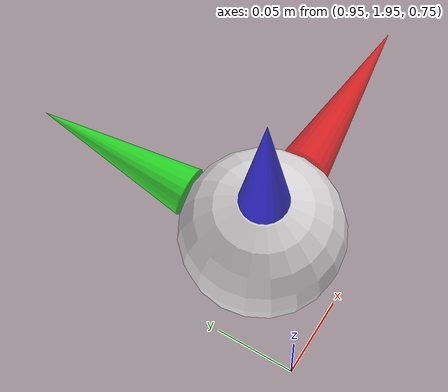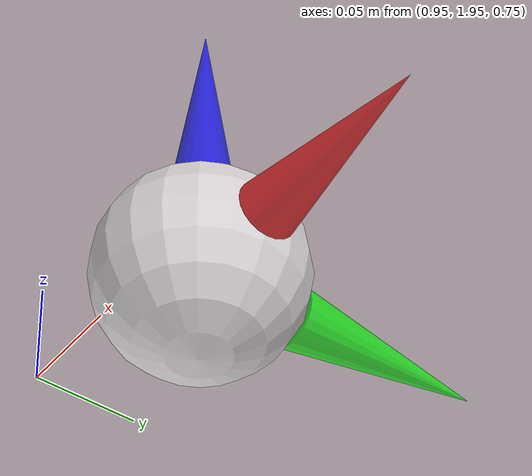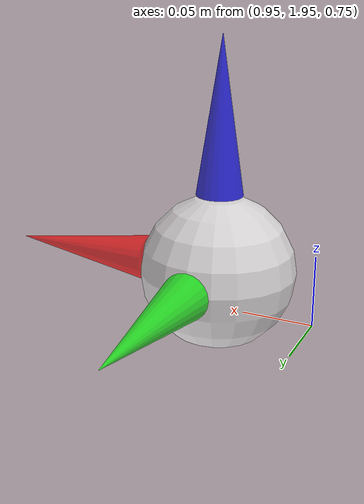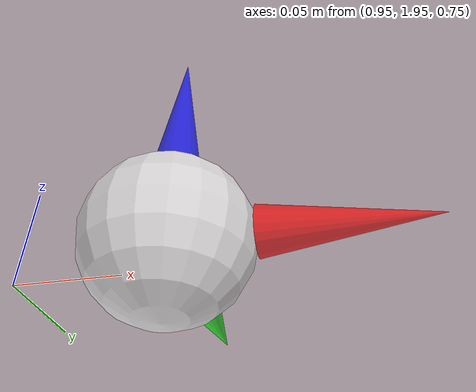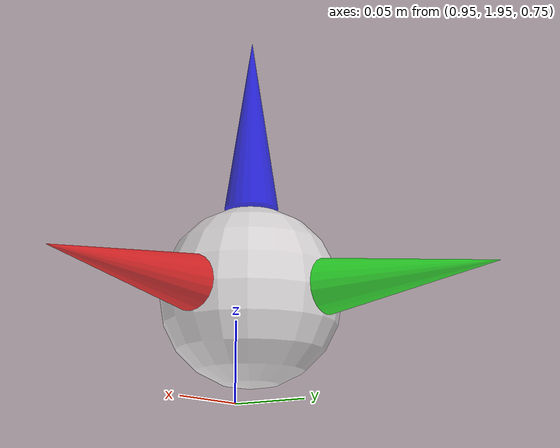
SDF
<?xml version="1.0"?>
<sdf version="1.10">
  <model name="spawn_point_marker_01">
    <static>true</static>
    <pose>1.0 2.0 0.8 0 0 0</pose>
    <link name="marker_link">

      <visual name="center_sphere">
        <geometry>
          <sphere><radius>0.05</radius></sphere>
        </geometry>
        <material>
          <ambient>1 1 1 0.7</ambient> <diffuse>1 1 1 0.7</diffuse>
        </material>
      </visual>

      <visual name="x_arrow">
        <pose>0.1 0 0 0 1.5708 0</pose>
        <geometry>
          <cone>
            <radius>0.015</radius>
            <length>0.1</length>
          </cone>
        </geometry>
        <material>
          <ambient>1 0 0 0.7</ambient> <diffuse>1 0 0 0.7</diffuse>
        </material>
      </visual>

      <visual name="y_arrow">
        <pose>0 0.1 0 -1.5708 0 0</pose>
        <geometry>
          <cone>
            <radius>0.015</radius>
            <length>0.1</length>
          </cone>
        </geometry>
        <material>
          <ambient>0 1 0 0.7</ambient> <diffuse>0 1 0 0.7</diffuse>
        </material>
      </visual>

      <visual name="z_arrow">
        <pose>0 0 0.1 0 0 0</pose>
        <geometry>
          <cone>
            <radius>0.015</radius>
            <length>0.1</length>
          </cone>
        </geometry>
        <material>
          <ambient>0 0 1 0.7</ambient> <diffuse>0 0 1 0.7</diffuse>
        </material>
      </visual>

    </link>
  </model>
</sdf>
